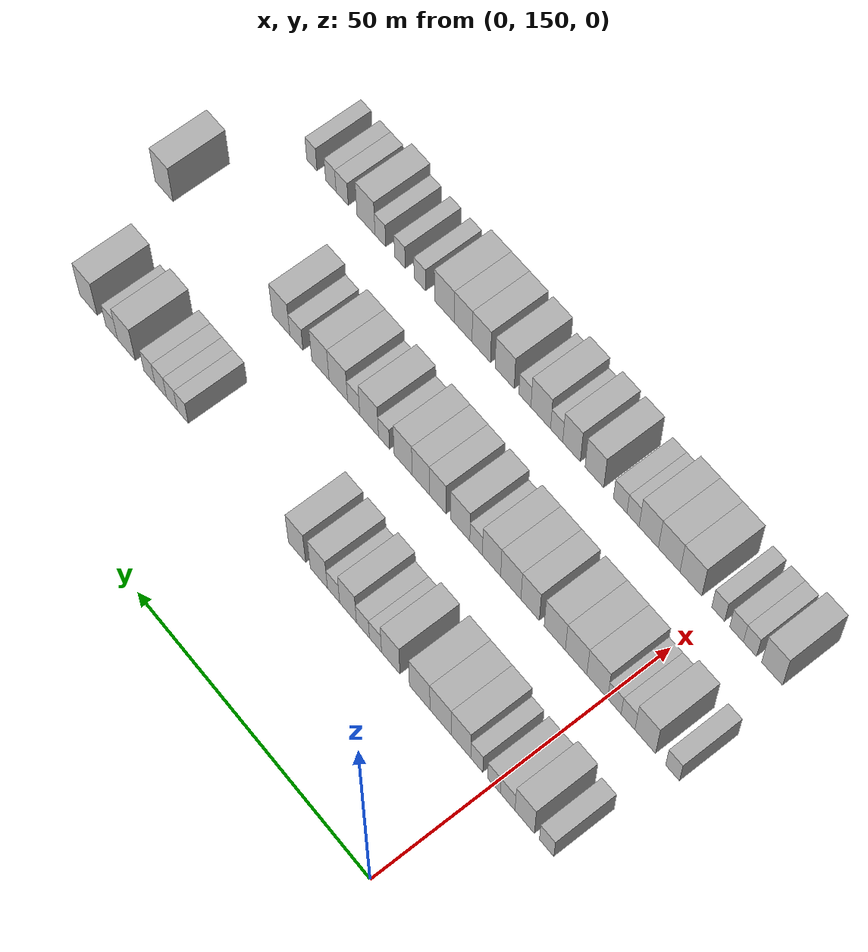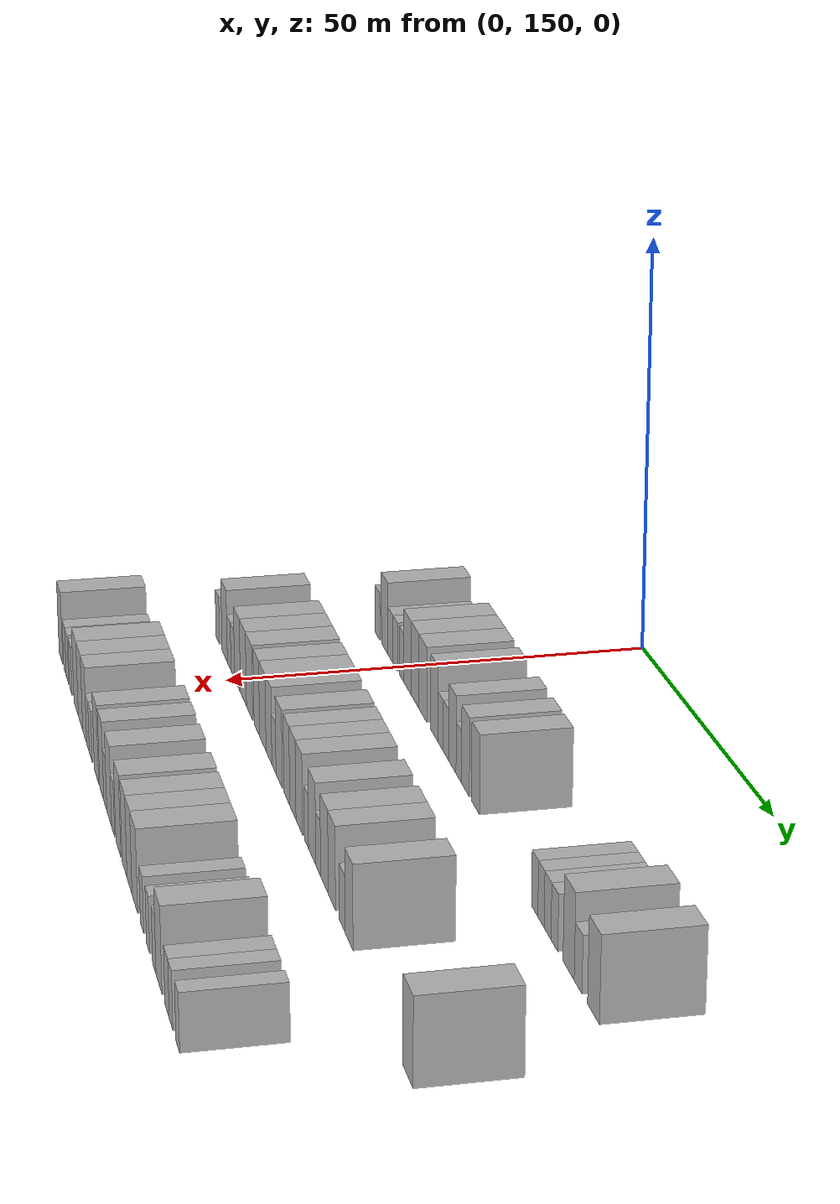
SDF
<sdf version="1.6">
 <world name="default">
  <model name="building_94">
   <static>1</static>
   <pose>25.0000 139.2223 0 0.000000 0.000000 0.000000</pose>
   <link name="link">
    <pose>0 0 3.00 0 0 0</pose>
    <collision name="collision"><geometry><box><size>10.0000 2.8879 6.0000</size></box></geometry></collision>
    <visual name="visual">
     <cast_shadows>0</cast_shadows>
     <geometry><box><size>10.0000 2.8879 6.0000</size></box></geometry>
     <material>
      <script>
       <uri>model://HANNAS_wall/materials/scripts</uri>
       <uri>model://HANNAS_wall/materials/textures</uri>
       <name>vrc/HANNAS_wall</name>
      </script>
     </material>
    </visual>
   </link>
  </model>
  <model name="building_95">
   <static>1</static>
   <pose>25.0000 143.6231 0 0.000000 0.000000 0.000000</pose>
   <link name="link">
    <pose>0 0 4.50 0 0 0</pose>
    <collision name="collision"><geometry><box><size>10.0000 3.9137 9.0000</size></box></geometry></collision>
    <visual name="visual">
     <cast_shadows>0</cast_shadows>
     <geometry><box><size>10.0000 3.9137 9.0000</size></box></geometry>
     <material>
      <script>
       <uri>model://HANNAS_wall/materials/scripts</uri>
       <uri>model://HANNAS_wall/materials/textures</uri>
       <name>vrc/HANNAS_wall</name>
      </script>
     </material>
    </visual>
   </link>
  </model>
  <model name="building_96">
   <static>1</static>
   <pose>25.0000 147.0490 0 0.000000 0.000000 0.000000</pose>
   <link name="link">
    <pose>0 0 3.00 0 0 0</pose>
    <collision name="collision"><geometry><box><size>10.0000 2.9381 6.0000</size></box></geometry></collision>
    <visual name="visual">
     <cast_shadows>0</cast_shadows>
     <geometry><box><size>10.0000 2.9381 6.0000</size></box></geometry>
     <material>
      <script>
       <uri>model://HANNAS_wall/materials/scripts</uri>
       <uri>model://HANNAS_wall/materials/textures</uri>
       <name>vrc/HANNAS_wall</name>
      </script>
     </material>
    </visual>
   </link>
  </model>
  <model name="building_97">
   <static>1</static>
   <pose>25.0000 149.8171 0 0.000000 0.000000 0.000000</pose>
   <link name="link">
    <pose>0 0 3.00 0 0 0</pose>
    <collision name="collision"><geometry><box><size>10.0000 2.5981 6.0000</size></box></geometry></collision>
    <visual name="visual">
     <cast_shadows>0</cast_shadows>
     <geometry><box><size>10.0000 2.5981 6.0000</size></box></geometry>
     <material>
      <script>
       <uri>model://HANNAS_wall/materials/scripts</uri>
       <uri>model://HANNAS_wall/materials/textures</uri>
       <name>vrc/HANNAS_wall</name>
      </script>
     </material>
    </visual>
   </link>
  </model>
  <model name="building_98">
   <static>1</static>
   <pose>25.0000 153.3529 0 0.000000 0.000000 0.000000</pose>
   <link name="link">
    <pose>0 0 3.00 0 0 0</pose>
    <collision name="collision"><geometry><box><size>10.0000 2.4735 6.0000</size></box></geometry></collision>
    <visual name="visual">
     <cast_shadows>0</cast_shadows>
     <geometry><box><size>10.0000 2.4735 6.0000</size></box></geometry>
     <material>
      <script>
       <uri>model://HANNAS_wall/materials/scripts</uri>
       <uri>model://HANNAS_wall/materials/textures</uri>
       <name>vrc/HANNAS_wall</name>
      </script>
     </material>
    </visual>
   </link>
  </model>
  <model name="building_99">
   <static>1</static>
   <pose>25.0000 156.6091 0 0.000000 0.000000 0.000000</pose>
   <link name="link">
    <pose>0 0 4.50 0 0 0</pose>
    <collision name="collision"><geometry><box><size>10.0000 4.0388 9.0000</size></box></geometry></collision>
    <visual name="visual">
     <cast_shadows>0</cast_shadows>
     <geometry><box><size>10.0000 4.0388 9.0000</size></box></geometry>
     <material>
      <script>
       <uri>model://HANNAS_wall/materials/scripts</uri>
       <uri>model://HANNAS_wall/materials/textures</uri>
       <name>vrc/HANNAS_wall</name>
      </script>
     </material>
    </visual>
   </link>
  </model>
  <model name="building_100">
   <static>1</static>
   <pose>25.0000 160.8219 0 0.000000 0.000000 0.000000</pose>
   <link name="link">
    <pose>0 0 4.50 0 0 0</pose>
    <collision name="collision"><geometry><box><size>10.0000 4.3868 9.0000</size></box></geometry></collision>
    <visual name="visual">
     <cast_shadows>0</cast_shadows>
     <geometry><box><size>10.0000 4.3868 9.0000</size></box></geometry>
     <material>
      <script>
       <uri>model://HANNAS_wall/materials/scripts</uri>
       <uri>model://HANNAS_wall/materials/textures</uri>
       <name>vrc/HANNAS_wall</name>
      </script>
     </material>
    </visual>
   </link>
  </model>
  <model name="building_101">
   <static>1</static>
   <pose>25.0000 165.1720 0 0.000000 0.000000 0.000000</pose>
   <link name="link">
    <pose>0 0 4.50 0 0 0</pose>
    <collision name="collision"><geometry><box><size>10.0000 4.3135 9.0000</size></box></geometry></collision>
    <visual name="visual">
     <cast_shadows>0</cast_shadows>
     <geometry><box><size>10.0000 4.3135 9.0000</size></box></geometry>
     <material>
      <script>
       <uri>model://HANNAS_wall/materials/scripts</uri>
       <uri>model://HANNAS_wall/materials/textures</uri>
       <name>vrc/HANNAS_wall</name>
      </script>
     </material>
    </visual>
   </link>
  </model>
  <model name="building_102">
   <static>1</static>
   <pose>25.0000 171.2678 0 0.000000 0.000000 0.000000</pose>
   <link name="link">
    <pose>0 0 4.50 0 0 0</pose>
    <collision name="collision"><geometry><box><size>10.0000 3.8781 9.0000</size></box></geometry></collision>
    <visual name="visual">
     <cast_shadows>0</cast_shadows>
     <geometry><box><size>10.0000 3.8781 9.0000</size></box></geometry>
     <material>
      <script>
       <uri>model://HANNAS_wall/materials/scripts</uri>
       <uri>model://HANNAS_wall/materials/textures</uri>
       <name>vrc/HANNAS_wall</name>
      </script>
     </material>
    </visual>
   </link>
  </model>
  <model name="building_103">
   <static>1</static>
   <pose>25.0000 174.5036 0 0.000000 0.000000 0.000000</pose>
   <link name="link">
    <pose>0 0 3.00 0 0 0</pose>
    <collision name="collision"><geometry><box><size>10.0000 2.5934 6.0000</size></box></geometry></collision>
    <visual name="visual">
     <cast_shadows>0</cast_shadows>
     <geometry><box><size>10.0000 2.5934 6.0000</size></box></geometry>
     <material>
      <script>
       <uri>model://HANNAS_wall/materials/scripts</uri>
       <uri>model://HANNAS_wall/materials/textures</uri>
       <name>vrc/HANNAS_wall</name>
      </script>
     </material>
    </visual>
   </link>
  </model>
  <model name="building_104">
   <static>1</static>
   <pose>25.0000 177.1857 0 0.000000 0.000000 0.000000</pose>
   <link name="link">
    <pose>0 0 3.00 0 0 0</pose>
    <collision name="collision"><geometry><box><size>10.0000 2.7708 6.0000</size></box></geometry></collision>
    <visual name="visual">
     <cast_shadows>0</cast_shadows>
     <geometry><box><size>10.0000 2.7708 6.0000</size></box></geometry>
     <material>
      <script>
       <uri>model://HANNAS_wall/materials/scripts</uri>
       <uri>model://HANNAS_wall/materials/textures</uri>
       <name>vrc/HANNAS_wall</name>
      </script>
     </material>
    </visual>
   </link>
  </model>
  <model name="building_105">
   <static>1</static>
   <pose>25.0000 180.3729 0 0.000000 0.000000 0.000000</pose>
   <link name="link">
    <pose>0 0 4.50 0 0 0</pose>
    <collision name="collision"><geometry><box><size>10.0000 3.6037 9.0000</size></box></geometry></collision>
    <visual name="visual">
     <cast_shadows>0</cast_shadows>
     <geometry><box><size>10.0000 3.6037 9.0000</size></box></geometry>
     <material>
      <script>
       <uri>model://HANNAS_wall/materials/scripts</uri>
       <uri>model://HANNAS_wall/materials/textures</uri>
       <name>vrc/HANNAS_wall</name>
      </script>
     </material>
    </visual>
   </link>
  </model>
  <model name="building_106">
   <static>1</static>
   <pose>25.0000 183.4995 0 0.000000 0.000000 0.000000</pose>
   <link name="link">
    <pose>0 0 3.00 0 0 0</pose>
    <collision name="collision"><geometry><box><size>10.0000 2.6494 6.0000</size></box></geometry></collision>
    <visual name="visual">
     <cast_shadows>0</cast_shadows>
     <geometry><box><size>10.0000 2.6494 6.0000</size></box></geometry>
     <material>
      <script>
       <uri>model://HANNAS_wall/materials/scripts</uri>
       <uri>model://HANNAS_wall/materials/textures</uri>
       <name>vrc/HANNAS_wall</name>
      </script>
     </material>
    </visual>
   </link>
  </model>
  <model name="building_107">
   <static>1</static>
   <pose>25.0000 186.6997 0 0.000000 0.000000 0.000000</pose>
   <link name="link">
    <pose>0 0 4.50 0 0 0</pose>
    <collision name="collision"><geometry><box><size>10.0000 3.7511 9.0000</size></box></geometry></collision>
    <visual name="visual">
     <cast_shadows>0</cast_shadows>
     <geometry><box><size>10.0000 3.7511 9.0000</size></box></geometry>
     <material>
      <script>
       <uri>model://HANNAS_wall/materials/scripts</uri>
       <uri>model://HANNAS_wall/materials/textures</uri>
       <name>vrc/HANNAS_wall</name>
      </script>
     </material>
    </visual>
   </link>
  </model>
  <model name="building_108">
   <static>1</static>
   <pose>25.0000 191.4714 0 0.000000 0.000000 0.000000</pose>
   <link name="link">
    <pose>0 0 4.50 0 0 0</pose>
    <collision name="collision"><geometry><box><size>10.0000 3.7923 9.0000</size></box></geometry></collision>
    <visual name="visual">
     <cast_shadows>0</cast_shadows>
     <geometry><box><size>10.0000 3.7923 9.0000</size></box></geometry>
     <material>
      <script>
       <uri>model://HANNAS_wall/materials/scripts</uri>
       <uri>model://HANNAS_wall/materials/textures</uri>
       <name>vrc/HANNAS_wall</name>
      </script>
     </material>
    </visual>
   </link>
  </model>
  <model name="building_109">
   <static>1</static>
   <pose>25.0000 217.1510 0 0.000000 0.000000 0.000000</pose>
   <link name="link">
    <pose>0 0 3.00 0 0 0</pose>
    <collision name="collision"><geometry><box><size>10.0000 2.5223 6.0000</size></box></geometry></collision>
    <visual name="visual">
     <cast_shadows>0</cast_shadows>
     <geometry><box><size>10.0000 2.5223 6.0000</size></box></geometry>
     <material>
      <script>
       <uri>model://HANNAS_wall/materials/scripts</uri>
       <uri>model://HANNAS_wall/materials/textures</uri>
       <name>vrc/HANNAS_wall</name>
      </script>
     </material>
    </visual>
   </link>
  </model>
  <model name="building_110">
   <static>1</static>
   <pose>25.0000 219.6556 0 0.000000 0.000000 0.000000</pose>
   <link name="link">
    <pose>0 0 3.00 0 0 0</pose>
    <collision name="collision"><geometry><box><size>10.0000 2.4870 6.0000</size></box></geometry></collision>
    <visual name="visual">
     <cast_shadows>0</cast_shadows>
     <geometry><box><size>10.0000 2.4870 6.0000</size></box></geometry>
     <material>
      <script>
       <uri>model://HANNAS_wall/materials/scripts</uri>
       <uri>model://HANNAS_wall/materials/textures</uri>
       <name>vrc/HANNAS_wall</name>
      </script>
     </material>
    </visual>
   </link>
  </model>
  <model name="building_111">
   <static>1</static>
   <pose>25.0000 222.2419 0 0.000000 0.000000 0.000000</pose>
   <link name="link">
    <pose>0 0 3.00 0 0 0</pose>
    <collision name="collision"><geometry><box><size>10.0000 2.6856 6.0000</size></box></geometry></collision>
    <visual name="visual">
     <cast_shadows>0</cast_shadows>
     <geometry><box><size>10.0000 2.6856 6.0000</size></box></geometry>
     <material>
      <script>
       <uri>model://HANNAS_wall/materials/scripts</uri>
       <uri>model://HANNAS_wall/materials/textures</uri>
       <name>vrc/HANNAS_wall</name>
      </script>
     </material>
    </visual>
   </link>
  </model>
  <model name="building_112">
   <static>1</static>
   <pose>25.0000 224.8906 0 0.000000 0.000000 0.000000</pose>
   <link name="link">
    <pose>0 0 3.00 0 0 0</pose>
    <collision name="collision"><geometry><box><size>10.0000 2.6119 6.0000</size></box></geometry></collision>
    <visual name="visual">
     <cast_shadows>0</cast_shadows>
     <geometry><box><size>10.0000 2.6119 6.0000</size></box></geometry>
     <material>
      <script>
       <uri>model://HANNAS_wall/materials/scripts</uri>
       <uri>model://HANNAS_wall/materials/textures</uri>
       <name>vrc/HANNAS_wall</name>
      </script>
     </material>
    </visual>
   </link>
  </model>
  <model name="building_113">
   <static>1</static>
   <pose>25.0000 230.2729 0 0.000000 0.000000 0.000000</pose>
   <link name="link">
    <pose>0 0 4.50 0 0 0</pose>
    <collision name="collision"><geometry><box><size>10.0000 4.1528 9.0000</size></box></geometry></collision>
    <visual name="visual">
     <cast_shadows>0</cast_shadows>
     <geometry><box><size>10.0000 4.1528 9.0000</size></box></geometry>
     <material>
      <script>
       <uri>model://HANNAS_wall/materials/scripts</uri>
       <uri>model://HANNAS_wall/materials/textures</uri>
       <name>vrc/HANNAS_wall</name>
      </script>
     </material>
    </visual>
   </link>
  </model>
  <model name="building_114">
   <static>1</static>
   <pose>25.0000 233.7670 0 0.000000 0.000000 0.000000</pose>
   <link name="link">
    <pose>0 0 3.00 0 0 0</pose>
    <collision name="collision"><geometry><box><size>10.0000 2.8354 6.0000</size></box></geometry></collision>
    <visual name="visual">
     <cast_shadows>0</cast_shadows>
     <geometry><box><size>10.0000 2.8354 6.0000</size></box></geometry>
     <material>
      <script>
       <uri>model://HANNAS_wall/materials/scripts</uri>
       <uri>model://HANNAS_wall/materials/textures</uri>
       <name>vrc/HANNAS_wall</name>
      </script>
     </material>
    </visual>
   </link>
  </model>
  <model name="building_115">
   <static>1</static>
   <pose>25.0000 239.2874 0 0.000000 0.000000 0.000000</pose>
   <link name="link">
    <pose>0 0 4.50 0 0 0</pose>
    <collision name="collision"><geometry><box><size>10.0000 4.2054 9.0000</size></box></geometry></collision>
    <visual name="visual">
     <cast_shadows>0</cast_shadows>
     <geometry><box><size>10.0000 4.2054 9.0000</size></box></geometry>
     <material>
      <script>
       <uri>model://HANNAS_wall/materials/scripts</uri>
       <uri>model://HANNAS_wall/materials/textures</uri>
       <name>vrc/HANNAS_wall</name>
      </script>
     </material>
    </visual>
   </link>
  </model>
  <model name="building_212">
   <static>1</static>
   <pose>44.0000 136.7989 0 0.000000 0.000000 0.000000</pose>
   <link name="link">
    <pose>0 0 3.00 0 0 0</pose>
    <collision name="collision"><geometry><box><size>10.0000 2.7330 6.0000</size></box></geometry></collision>
    <visual name="visual">
     <cast_shadows>0</cast_shadows>
     <geometry><box><size>10.0000 2.7330 6.0000</size></box></geometry>
     <material>
      <script>
       <uri>model://HANNAS_wall/materials/scripts</uri>
       <uri>model://HANNAS_wall/materials/textures</uri>
       <name>vrc/HANNAS_wall</name>
      </script>
     </material>
    </visual>
   </link>
  </model>
  <model name="building_213">
   <static>1</static>
   <pose>44.0000 142.2242 0 0.000000 0.000000 0.000000</pose>
   <link name="link">
    <pose>0 0 4.50 0 0 0</pose>
    <collision name="collision"><geometry><box><size>10.0000 4.1176 9.0000</size></box></geometry></collision>
    <visual name="visual">
     <cast_shadows>0</cast_shadows>
     <geometry><box><size>10.0000 4.1176 9.0000</size></box></geometry>
     <material>
      <script>
       <uri>model://HANNAS_wall/materials/scripts</uri>
       <uri>model://HANNAS_wall/materials/textures</uri>
       <name>vrc/HANNAS_wall</name>
      </script>
     </material>
    </visual>
   </link>
  </model>
  <model name="building_214">
   <static>1</static>
   <pose>44.0000 145.6727 0 0.000000 0.000000 0.000000</pose>
   <link name="link">
    <pose>0 0 3.00 0 0 0</pose>
    <collision name="collision"><geometry><box><size>10.0000 2.7794 6.0000</size></box></geometry></collision>
    <visual name="visual">
     <cast_shadows>0</cast_shadows>
     <geometry><box><size>10.0000 2.7794 6.0000</size></box></geometry>
     <material>
      <script>
       <uri>model://HANNAS_wall/materials/scripts</uri>
       <uri>model://HANNAS_wall/materials/textures</uri>
       <name>vrc/HANNAS_wall</name>
      </script>
     </material>
    </visual>
   </link>
  </model>
  <model name="building_215">
   <static>1</static>
   <pose>44.0000 148.4263 0 0.000000 0.000000 0.000000</pose>
   <link name="link">
    <pose>0 0 3.00 0 0 0</pose>
    <collision name="collision"><geometry><box><size>10.0000 2.7279 6.0000</size></box></geometry></collision>
    <visual name="visual">
     <cast_shadows>0</cast_shadows>
     <geometry><box><size>10.0000 2.7279 6.0000</size></box></geometry>
     <material>
      <script>
       <uri>model://HANNAS_wall/materials/scripts</uri>
       <uri>model://HANNAS_wall/materials/textures</uri>
       <name>vrc/HANNAS_wall</name>
      </script>
     </material>
    </visual>
   </link>
  </model>
  <model name="building_216">
   <static>1</static>
   <pose>44.0000 151.9061 0 0.000000 0.000000 0.000000</pose>
   <link name="link">
    <pose>0 0 4.50 0 0 0</pose>
    <collision name="collision"><geometry><box><size>10.0000 4.2317 9.0000</size></box></geometry></collision>
    <visual name="visual">
     <cast_shadows>0</cast_shadows>
     <geometry><box><size>10.0000 4.2317 9.0000</size></box></geometry>
     <material>
      <script>
       <uri>model://HANNAS_wall/materials/scripts</uri>
       <uri>model://HANNAS_wall/materials/textures</uri>
       <name>vrc/HANNAS_wall</name>
      </script>
     </material>
    </visual>
   </link>
  </model>
  <model name="building_217">
   <static>1</static>
   <pose>44.0000 156.2125 0 0.000000 0.000000 0.000000</pose>
   <link name="link">
    <pose>0 0 4.50 0 0 0</pose>
    <collision name="collision"><geometry><box><size>10.0000 4.3810 9.0000</size></box></geometry></collision>
    <visual name="visual">
     <cast_shadows>0</cast_shadows>
     <geometry><box><size>10.0000 4.3810 9.0000</size></box></geometry>
     <material>
      <script>
       <uri>model://HANNAS_wall/materials/scripts</uri>
       <uri>model://HANNAS_wall/materials/textures</uri>
       <name>vrc/HANNAS_wall</name>
      </script>
     </material>
    </visual>
   </link>
  </model>
  <model name="building_218">
   <static>1</static>
   <pose>44.0000 160.5790 0 0.000000 0.000000 0.000000</pose>
   <link name="link">
    <pose>0 0 4.50 0 0 0</pose>
    <collision name="collision"><geometry><box><size>10.0000 4.3520 9.0000</size></box></geometry></collision>
    <visual name="visual">
     <cast_shadows>0</cast_shadows>
     <geometry><box><size>10.0000 4.3520 9.0000</size></box></geometry>
     <material>
      <script>
       <uri>model://HANNAS_wall/materials/scripts</uri>
       <uri>model://HANNAS_wall/materials/textures</uri>
       <name>vrc/HANNAS_wall</name>
      </script>
     </material>
    </visual>
   </link>
  </model>
  <model name="building_219">
   <static>1</static>
   <pose>44.0000 165.6683 0 0.000000 0.000000 0.000000</pose>
   <link name="link">
    <pose>0 0 4.50 0 0 0</pose>
    <collision name="collision"><geometry><box><size>10.0000 3.8267 9.0000</size></box></geometry></collision>
    <visual name="visual">
     <cast_shadows>0</cast_shadows>
     <geometry><box><size>10.0000 3.8267 9.0000</size></box></geometry>
     <material>
      <script>
       <uri>model://HANNAS_wall/materials/scripts</uri>
       <uri>model://HANNAS_wall/materials/textures</uri>
       <name>vrc/HANNAS_wall</name>
      </script>
     </material>
    </visual>
   </link>
  </model>
  <model name="building_220">
   <static>1</static>
   <pose>44.0000 169.7046 0 0.000000 0.000000 0.000000</pose>
   <link name="link">
    <pose>0 0 4.50 0 0 0</pose>
    <collision name="collision"><geometry><box><size>10.0000 4.2459 9.0000</size></box></geometry></collision>
    <visual name="visual">
     <cast_shadows>0</cast_shadows>
     <geometry><box><size>10.0000 4.2459 9.0000</size></box></geometry>
     <material>
      <script>
       <uri>model://HANNAS_wall/materials/scripts</uri>
       <uri>model://HANNAS_wall/materials/textures</uri>
       <name>vrc/HANNAS_wall</name>
      </script>
     </material>
    </visual>
   </link>
  </model>
  <model name="building_221">
   <static>1</static>
   <pose>44.0000 173.7586 0 0.000000 0.000000 0.000000</pose>
   <link name="link">
    <pose>0 0 4.50 0 0 0</pose>
    <collision name="collision"><geometry><box><size>10.0000 3.8621 9.0000</size></box></geometry></collision>
    <visual name="visual">
     <cast_shadows>0</cast_shadows>
     <geometry><box><size>10.0000 3.8621 9.0000</size></box></geometry>
     <material>
      <script>
       <uri>model://HANNAS_wall/materials/scripts</uri>
       <uri>model://HANNAS_wall/materials/textures</uri>
       <name>vrc/HANNAS_wall</name>
      </script>
     </material>
    </visual>
   </link>
  </model>
  <model name="building_222">
   <static>1</static>
   <pose>44.0000 177.0190 0 0.000000 0.000000 0.000000</pose>
   <link name="link">
    <pose>0 0 3.00 0 0 0</pose>
    <collision name="collision"><geometry><box><size>10.0000 2.6587 6.0000</size></box></geometry></collision>
    <visual name="visual">
     <cast_shadows>0</cast_shadows>
     <geometry><box><size>10.0000 2.6587 6.0000</size></box></geometry>
     <material>
      <script>
       <uri>model://HANNAS_wall/materials/scripts</uri>
       <uri>model://HANNAS_wall/materials/textures</uri>
       <name>vrc/HANNAS_wall</name>
      </script>
     </material>
    </visual>
   </link>
  </model>
  <model name="building_223">
   <static>1</static>
   <pose>44.0000 180.3792 0 0.000000 0.000000 0.000000</pose>
   <link name="link">
    <pose>0 0 4.50 0 0 0</pose>
    <collision name="collision"><geometry><box><size>10.0000 4.0618 9.0000</size></box></geometry></collision>
    <visual name="visual">
     <cast_shadows>0</cast_shadows>
     <geometry><box><size>10.0000 4.0618 9.0000</size></box></geometry>
     <material>
      <script>
       <uri>model://HANNAS_wall/materials/scripts</uri>
       <uri>model://HANNAS_wall/materials/textures</uri>
       <name>vrc/HANNAS_wall</name>
      </script>
     </material>
    </visual>
   </link>
  </model>
  <model name="building_224">
   <static>1</static>
   <pose>44.0000 185.2115 0 0.000000 0.000000 0.000000</pose>
   <link name="link">
    <pose>0 0 4.50 0 0 0</pose>
    <collision name="collision"><geometry><box><size>10.0000 3.6027 9.0000</size></box></geometry></collision>
    <visual name="visual">
     <cast_shadows>0</cast_shadows>
     <geometry><box><size>10.0000 3.6027 9.0000</size></box></geometry>
     <material>
      <script>
       <uri>model://HANNAS_wall/materials/scripts</uri>
       <uri>model://HANNAS_wall/materials/textures</uri>
       <name>vrc/HANNAS_wall</name>
      </script>
     </material>
    </visual>
   </link>
  </model>
  <model name="building_225">
   <static>1</static>
   <pose>44.0000 188.8813 0 0.000000 0.000000 0.000000</pose>
   <link name="link">
    <pose>0 0 4.50 0 0 0</pose>
    <collision name="collision"><geometry><box><size>10.0000 3.7370 9.0000</size></box></geometry></collision>
    <visual name="visual">
     <cast_shadows>0</cast_shadows>
     <geometry><box><size>10.0000 3.7370 9.0000</size></box></geometry>
     <material>
      <script>
       <uri>model://HANNAS_wall/materials/scripts</uri>
       <uri>model://HANNAS_wall/materials/textures</uri>
       <name>vrc/HANNAS_wall</name>
      </script>
     </material>
    </visual>
   </link>
  </model>
  <model name="building_226">
   <static>1</static>
   <pose>44.0000 192.7222 0 0.000000 0.000000 0.000000</pose>
   <link name="link">
    <pose>0 0 4.50 0 0 0</pose>
    <collision name="collision"><geometry><box><size>10.0000 3.9448 9.0000</size></box></geometry></collision>
    <visual name="visual">
     <cast_shadows>0</cast_shadows>
     <geometry><box><size>10.0000 3.9448 9.0000</size></box></geometry>
     <material>
      <script>
       <uri>model://HANNAS_wall/materials/scripts</uri>
       <uri>model://HANNAS_wall/materials/textures</uri>
       <name>vrc/HANNAS_wall</name>
      </script>
     </material>
    </visual>
   </link>
  </model>
  <model name="building_227">
   <static>1</static>
   <pose>44.0000 196.9129 0 0.000000 0.000000 0.000000</pose>
   <link name="link">
    <pose>0 0 3.00 0 0 0</pose>
    <collision name="collision"><geometry><box><size>10.0000 2.4365 6.0000</size></box></geometry></collision>
    <visual name="visual">
     <cast_shadows>0</cast_shadows>
     <geometry><box><size>10.0000 2.4365 6.0000</size></box></geometry>
     <material>
      <script>
       <uri>model://HANNAS_wall/materials/scripts</uri>
       <uri>model://HANNAS_wall/materials/textures</uri>
       <name>vrc/HANNAS_wall</name>
      </script>
     </material>
    </visual>
   </link>
  </model>
  <model name="building_228">
   <static>1</static>
   <pose>44.0000 200.2077 0 0.000000 0.000000 0.000000</pose>
   <link name="link">
    <pose>0 0 4.50 0 0 0</pose>
    <collision name="collision"><geometry><box><size>10.0000 4.1532 9.0000</size></box></geometry></collision>
    <visual name="visual">
     <cast_shadows>0</cast_shadows>
     <geometry><box><size>10.0000 4.1532 9.0000</size></box></geometry>
     <material>
      <script>
       <uri>model://HANNAS_wall/materials/scripts</uri>
       <uri>model://HANNAS_wall/materials/textures</uri>
       <name>vrc/HANNAS_wall</name>
      </script>
     </material>
    </visual>
   </link>
  </model>
  <model name="building_229">
   <static>1</static>
   <pose>44.0000 203.6355 0 0.000000 0.000000 0.000000</pose>
   <link name="link">
    <pose>0 0 3.00 0 0 0</pose>
    <collision name="collision"><geometry><box><size>10.0000 2.7024 6.0000</size></box></geometry></collision>
    <visual name="visual">
     <cast_shadows>0</cast_shadows>
     <geometry><box><size>10.0000 2.7024 6.0000</size></box></geometry>
     <material>
      <script>
       <uri>model://HANNAS_wall/materials/scripts</uri>
       <uri>model://HANNAS_wall/materials/textures</uri>
       <name>vrc/HANNAS_wall</name>
      </script>
     </material>
    </visual>
   </link>
  </model>
  <model name="building_230">
   <static>1</static>
   <pose>44.0000 207.0620 0 0.000000 0.000000 0.000000</pose>
   <link name="link">
    <pose>0 0 4.50 0 0 0</pose>
    <collision name="collision"><geometry><box><size>10.0000 4.1505 9.0000</size></box></geometry></collision>
    <visual name="visual">
     <cast_shadows>0</cast_shadows>
     <geometry><box><size>10.0000 4.1505 9.0000</size></box></geometry>
     <material>
      <script>
       <uri>model://HANNAS_wall/materials/scripts</uri>
       <uri>model://HANNAS_wall/materials/textures</uri>
       <name>vrc/HANNAS_wall</name>
      </script>
     </material>
    </visual>
   </link>
  </model>
  <model name="building_231">
   <static>1</static>
   <pose>44.0000 211.0865 0 0.000000 0.000000 0.000000</pose>
   <link name="link">
    <pose>0 0 4.50 0 0 0</pose>
    <collision name="collision"><geometry><box><size>10.0000 3.8985 9.0000</size></box></geometry></collision>
    <visual name="visual">
     <cast_shadows>0</cast_shadows>
     <geometry><box><size>10.0000 3.8985 9.0000</size></box></geometry>
     <material>
      <script>
       <uri>model://HANNAS_wall/materials/scripts</uri>
       <uri>model://HANNAS_wall/materials/textures</uri>
       <name>vrc/HANNAS_wall</name>
      </script>
     </material>
    </visual>
   </link>
  </model>
  <model name="building_232">
   <static>1</static>
   <pose>44.0000 216.5207 0 0.000000 0.000000 0.000000</pose>
   <link name="link">
    <pose>0 0 3.00 0 0 0</pose>
    <collision name="collision"><geometry><box><size>10.0000 2.9701 6.0000</size></box></geometry></collision>
    <visual name="visual">
     <cast_shadows>0</cast_shadows>
     <geometry><box><size>10.0000 2.9701 6.0000</size></box></geometry>
     <material>
      <script>
       <uri>model://HANNAS_wall/materials/scripts</uri>
       <uri>model://HANNAS_wall/materials/textures</uri>
       <name>vrc/HANNAS_wall</name>
      </script>
     </material>
    </visual>
   </link>
  </model>
  <model name="building_233">
   <static>1</static>
   <pose>44.0000 220.0233 0 0.000000 0.000000 0.000000</pose>
   <link name="link">
    <pose>0 0 4.50 0 0 0</pose>
    <collision name="collision"><geometry><box><size>10.0000 4.0351 9.0000</size></box></geometry></collision>
    <visual name="visual">
     <cast_shadows>0</cast_shadows>
     <geometry><box><size>10.0000 4.0351 9.0000</size></box></geometry>
     <material>
      <script>
       <uri>model://HANNAS_wall/materials/scripts</uri>
       <uri>model://HANNAS_wall/materials/textures</uri>
       <name>vrc/HANNAS_wall</name>
      </script>
     </material>
    </visual>
   </link>
  </model>
  <model name="building_234">
   <static>1</static>
   <pose>44.0000 247.4786 0 0.000000 0.000000 0.000000</pose>
   <link name="link">
    <pose>0 0 4.50 0 0 0</pose>
    <collision name="collision"><geometry><box><size>10.0000 4.2918 9.0000</size></box></geometry></collision>
    <visual name="visual">
     <cast_shadows>0</cast_shadows>
     <geometry><box><size>10.0000 4.2918 9.0000</size></box></geometry>
     <material>
      <script>
       <uri>model://HANNAS_wall/materials/scripts</uri>
       <uri>model://HANNAS_wall/materials/textures</uri>
       <name>vrc/HANNAS_wall</name>
      </script>
     </material>
    </visual>
   </link>
  </model>
  <model name="building_327">
   <static>1</static>
   <pose>63.0000 138.9856 0 0.000000 0.000000 0.000000</pose>
   <link name="link">
    <pose>0 0 4.50 0 0 0</pose>
    <collision name="collision"><geometry><box><size>10.0000 4.1306 9.0000</size></box></geometry></collision>
    <visual name="visual">
     <cast_shadows>0</cast_shadows>
     <geometry><box><size>10.0000 4.1306 9.0000</size></box></geometry>
     <material>
      <script>
       <uri>model://HANNAS_wall/materials/scripts</uri>
       <uri>model://HANNAS_wall/materials/textures</uri>
       <name>vrc/HANNAS_wall</name>
      </script>
     </material>
    </visual>
   </link>
  </model>
  <model name="building_328">
   <static>1</static>
   <pose>63.0000 143.3593 0 0.000000 0.000000 0.000000</pose>
   <link name="link">
    <pose>0 0 3.00 0 0 0</pose>
    <collision name="collision"><geometry><box><size>10.0000 2.6169 6.0000</size></box></geometry></collision>
    <visual name="visual">
     <cast_shadows>0</cast_shadows>
     <geometry><box><size>10.0000 2.6169 6.0000</size></box></geometry>
     <material>
      <script>
       <uri>model://HANNAS_wall/materials/scripts</uri>
       <uri>model://HANNAS_wall/materials/textures</uri>
       <name>vrc/HANNAS_wall</name>
      </script>
     </material>
    </visual>
   </link>
  </model>
  <model name="building_329">
   <static>1</static>
   <pose>63.0000 146.0314 0 0.000000 0.000000 0.000000</pose>
   <link name="link">
    <pose>0 0 3.00 0 0 0</pose>
    <collision name="collision"><geometry><box><size>10.0000 2.7273 6.0000</size></box></geometry></collision>
    <visual name="visual">
     <cast_shadows>0</cast_shadows>
     <geometry><box><size>10.0000 2.7273 6.0000</size></box></geometry>
     <material>
      <script>
       <uri>model://HANNAS_wall/materials/scripts</uri>
       <uri>model://HANNAS_wall/materials/textures</uri>
       <name>vrc/HANNAS_wall</name>
      </script>
     </material>
    </visual>
   </link>
  </model>
  <model name="building_330">
   <static>1</static>
   <pose>63.0000 149.6946 0 0.000000 0.000000 0.000000</pose>
   <link name="link">
    <pose>0 0 3.00 0 0 0</pose>
    <collision name="collision"><geometry><box><size>10.0000 2.5991 6.0000</size></box></geometry></collision>
    <visual name="visual">
     <cast_shadows>0</cast_shadows>
     <geometry><box><size>10.0000 2.5991 6.0000</size></box></geometry>
     <material>
      <script>
       <uri>model://HANNAS_wall/materials/scripts</uri>
       <uri>model://HANNAS_wall/materials/textures</uri>
       <name>vrc/HANNAS_wall</name>
      </script>
     </material>
    </visual>
   </link>
  </model>
  <model name="building_331">
   <static>1</static>
   <pose>63.0000 155.2184 0 0.000000 0.000000 0.000000</pose>
   <link name="link">
    <pose>0 0 4.50 0 0 0</pose>
    <collision name="collision"><geometry><box><size>10.0000 4.4485 9.0000</size></box></geometry></collision>
    <visual name="visual">
     <cast_shadows>0</cast_shadows>
     <geometry><box><size>10.0000 4.4485 9.0000</size></box></geometry>
     <material>
      <script>
       <uri>model://HANNAS_wall/materials/scripts</uri>
       <uri>model://HANNAS_wall/materials/textures</uri>
       <name>vrc/HANNAS_wall</name>
      </script>
     </material>
    </visual>
   </link>
  </model>
  <model name="building_332">
   <static>1</static>
   <pose>63.0000 159.6458 0 0.000000 0.000000 0.000000</pose>
   <link name="link">
    <pose>0 0 4.50 0 0 0</pose>
    <collision name="collision"><geometry><box><size>10.0000 4.4063 9.0000</size></box></geometry></collision>
    <visual name="visual">
     <cast_shadows>0</cast_shadows>
     <geometry><box><size>10.0000 4.4063 9.0000</size></box></geometry>
     <material>
      <script>
       <uri>model://HANNAS_wall/materials/scripts</uri>
       <uri>model://HANNAS_wall/materials/textures</uri>
       <name>vrc/HANNAS_wall</name>
      </script>
     </material>
    </visual>
   </link>
  </model>
  <model name="building_333">
   <static>1</static>
   <pose>63.0000 163.8386 0 0.000000 0.000000 0.000000</pose>
   <link name="link">
    <pose>0 0 4.50 0 0 0</pose>
    <collision name="collision"><geometry><box><size>10.0000 3.9792 9.0000</size></box></geometry></collision>
    <visual name="visual">
     <cast_shadows>0</cast_shadows>
     <geometry><box><size>10.0000 3.9792 9.0000</size></box></geometry>
     <material>
      <script>
       <uri>model://HANNAS_wall/materials/scripts</uri>
       <uri>model://HANNAS_wall/materials/textures</uri>
       <name>vrc/HANNAS_wall</name>
      </script>
     </material>
    </visual>
   </link>
  </model>
  <model name="building_334">
   <static>1</static>
   <pose>63.0000 167.0841 0 0.000000 0.000000 0.000000</pose>
   <link name="link">
    <pose>0 0 3.00 0 0 0</pose>
    <collision name="collision"><geometry><box><size>10.0000 2.5119 6.0000</size></box></geometry></collision>
    <visual name="visual">
     <cast_shadows>0</cast_shadows>
     <geometry><box><size>10.0000 2.5119 6.0000</size></box></geometry>
     <material>
      <script>
       <uri>model://HANNAS_wall/materials/scripts</uri>
       <uri>model://HANNAS_wall/materials/textures</uri>
       <name>vrc/HANNAS_wall</name>
      </script>
     </material>
    </visual>
   </link>
  </model>
  <model name="building_335">
   <static>1</static>
   <pose>63.0000 169.7542 0 0.000000 0.000000 0.000000</pose>
   <link name="link">
    <pose>0 0 3.00 0 0 0</pose>
    <collision name="collision"><geometry><box><size>10.0000 2.8281 6.0000</size></box></geometry></collision>
    <visual name="visual">
     <cast_shadows>0</cast_shadows>
     <geometry><box><size>10.0000 2.8281 6.0000</size></box></geometry>
     <material>
      <script>
       <uri>model://HANNAS_wall/materials/scripts</uri>
       <uri>model://HANNAS_wall/materials/textures</uri>
       <name>vrc/HANNAS_wall</name>
      </script>
     </material>
    </visual>
   </link>
  </model>
  <model name="building_336">
   <static>1</static>
   <pose>63.0000 175.1345 0 0.000000 0.000000 0.000000</pose>
   <link name="link">
    <pose>0 0 4.50 0 0 0</pose>
    <collision name="collision"><geometry><box><size>10.0000 3.9325 9.0000</size></box></geometry></collision>
    <visual name="visual">
     <cast_shadows>0</cast_shadows>
     <geometry><box><size>10.0000 3.9325 9.0000</size></box></geometry>
     <material>
      <script>
       <uri>model://HANNAS_wall/materials/scripts</uri>
       <uri>model://HANNAS_wall/materials/textures</uri>
       <name>vrc/HANNAS_wall</name>
      </script>
     </material>
    </visual>
   </link>
  </model>
  <model name="building_337">
   <static>1</static>
   <pose>63.0000 179.9681 0 0.000000 0.000000 0.000000</pose>
   <link name="link">
    <pose>0 0 4.50 0 0 0</pose>
    <collision name="collision"><geometry><box><size>10.0000 3.7348 9.0000</size></box></geometry></collision>
    <visual name="visual">
     <cast_shadows>0</cast_shadows>
     <geometry><box><size>10.0000 3.7348 9.0000</size></box></geometry>
     <material>
      <script>
       <uri>model://HANNAS_wall/materials/scripts</uri>
       <uri>model://HANNAS_wall/materials/textures</uri>
       <name>vrc/HANNAS_wall</name>
      </script>
     </material>
    </visual>
   </link>
  </model>
  <model name="building_338">
   <static>1</static>
   <pose>63.0000 183.1296 0 0.000000 0.000000 0.000000</pose>
   <link name="link">
    <pose>0 0 3.00 0 0 0</pose>
    <collision name="collision"><geometry><box><size>10.0000 2.5883 6.0000</size></box></geometry></collision>
    <visual name="visual">
     <cast_shadows>0</cast_shadows>
     <geometry><box><size>10.0000 2.5883 6.0000</size></box></geometry>
     <material>
      <script>
       <uri>model://HANNAS_wall/materials/scripts</uri>
       <uri>model://HANNAS_wall/materials/textures</uri>
       <name>vrc/HANNAS_wall</name>
      </script>
     </material>
    </visual>
   </link>
  </model>
  <model name="building_339">
   <static>1</static>
   <pose>63.0000 186.5284 0 0.000000 0.000000 0.000000</pose>
   <link name="link">
    <pose>0 0 4.50 0 0 0</pose>
    <collision name="collision"><geometry><box><size>10.0000 4.2092 9.0000</size></box></geometry></collision>
    <visual name="visual">
     <cast_shadows>0</cast_shadows>
     <geometry><box><size>10.0000 4.2092 9.0000</size></box></geometry>
     <material>
      <script>
       <uri>model://HANNAS_wall/materials/scripts</uri>
       <uri>model://HANNAS_wall/materials/textures</uri>
       <name>vrc/HANNAS_wall</name>
      </script>
     </material>
    </visual>
   </link>
  </model>
  <model name="building_340">
   <static>1</static>
   <pose>63.0000 189.9346 0 0.000000 0.000000 0.000000</pose>
   <link name="link">
    <pose>0 0 3.00 0 0 0</pose>
    <collision name="collision"><geometry><box><size>10.0000 2.6031 6.0000</size></box></geometry></collision>
    <visual name="visual">
     <cast_shadows>0</cast_shadows>
     <geometry><box><size>10.0000 2.6031 6.0000</size></box></geometry>
     <material>
      <script>
       <uri>model://HANNAS_wall/materials/scripts</uri>
       <uri>model://HANNAS_wall/materials/textures</uri>
       <name>vrc/HANNAS_wall</name>
      </script>
     </material>
    </visual>
   </link>
  </model>
  <model name="building_341">
   <static>1</static>
   <pose>63.0000 194.3151 0 0.000000 0.000000 0.000000</pose>
   <link name="link">
    <pose>0 0 4.50 0 0 0</pose>
    <collision name="collision"><geometry><box><size>10.0000 4.1581 9.0000</size></box></geometry></collision>
    <visual name="visual">
     <cast_shadows>0</cast_shadows>
     <geometry><box><size>10.0000 4.1581 9.0000</size></box></geometry>
     <material>
      <script>
       <uri>model://HANNAS_wall/materials/scripts</uri>
       <uri>model://HANNAS_wall/materials/textures</uri>
       <name>vrc/HANNAS_wall</name>
      </script>
     </material>
    </visual>
   </link>
  </model>
  <model name="building_342">
   <static>1</static>
   <pose>63.0000 199.4241 0 0.000000 0.000000 0.000000</pose>
   <link name="link">
    <pose>0 0 4.50 0 0 0</pose>
    <collision name="collision"><geometry><box><size>10.0000 4.0599 9.0000</size></box></geometry></collision>
    <visual name="visual">
     <cast_shadows>0</cast_shadows>
     <geometry><box><size>10.0000 4.0599 9.0000</size></box></geometry>
     <material>
      <script>
       <uri>model://HANNAS_wall/materials/scripts</uri>
       <uri>model://HANNAS_wall/materials/textures</uri>
       <name>vrc/HANNAS_wall</name>
      </script>
     </material>
    </visual>
   </link>
  </model>
  <model name="building_343">
   <static>1</static>
   <pose>63.0000 203.4076 0 0.000000 0.000000 0.000000</pose>
   <link name="link">
    <pose>0 0 4.50 0 0 0</pose>
    <collision name="collision"><geometry><box><size>10.0000 3.9069 9.0000</size></box></geometry></collision>
    <visual name="visual">
     <cast_shadows>0</cast_shadows>
     <geometry><box><size>10.0000 3.9069 9.0000</size></box></geometry>
     <material>
      <script>
       <uri>model://HANNAS_wall/materials/scripts</uri>
       <uri>model://HANNAS_wall/materials/textures</uri>
       <name>vrc/HANNAS_wall</name>
      </script>
     </material>
    </visual>
   </link>
  </model>
  <model name="building_344">
   <static>1</static>
   <pose>63.0000 207.5564 0 0.000000 0.000000 0.000000</pose>
   <link name="link">
    <pose>0 0 4.50 0 0 0</pose>
    <collision name="collision"><geometry><box><size>10.0000 4.3907 9.0000</size></box></geometry></collision>
    <visual name="visual">
     <cast_shadows>0</cast_shadows>
     <geometry><box><size>10.0000 4.3907 9.0000</size></box></geometry>
     <material>
      <script>
       <uri>model://HANNAS_wall/materials/scripts</uri>
       <uri>model://HANNAS_wall/materials/textures</uri>
       <name>vrc/HANNAS_wall</name>
      </script>
     </material>
    </visual>
   </link>
  </model>
  <model name="building_345">
   <static>1</static>
   <pose>63.0000 213.0431 0 0.000000 0.000000 0.000000</pose>
   <link name="link">
    <pose>0 0 3.00 0 0 0</pose>
    <collision name="collision"><geometry><box><size>10.0000 2.5827 6.0000</size></box></geometry></collision>
    <visual name="visual">
     <cast_shadows>0</cast_shadows>
     <geometry><box><size>10.0000 2.5827 6.0000</size></box></geometry>
     <material>
      <script>
       <uri>model://HANNAS_wall/materials/scripts</uri>
       <uri>model://HANNAS_wall/materials/textures</uri>
       <name>vrc/HANNAS_wall</name>
      </script>
     </material>
    </visual>
   </link>
  </model>
  <model name="building_346">
   <static>1</static>
   <pose>63.0000 217.5412 0 0.000000 0.000000 0.000000</pose>
   <link name="link">
    <pose>0 0 3.00 0 0 0</pose>
    <collision name="collision"><geometry><box><size>10.0000 2.4136 6.0000</size></box></geometry></collision>
    <visual name="visual">
     <cast_shadows>0</cast_shadows>
     <geometry><box><size>10.0000 2.4136 6.0000</size></box></geometry>
     <material>
      <script>
       <uri>model://HANNAS_wall/materials/scripts</uri>
       <uri>model://HANNAS_wall/materials/textures</uri>
       <name>vrc/HANNAS_wall</name>
      </script>
     </material>
    </visual>
   </link>
  </model>
  <model name="building_347">
   <static>1</static>
   <pose>63.0000 221.9701 0 0.000000 0.000000 0.000000</pose>
   <link name="link">
    <pose>0 0 3.00 0 0 0</pose>
    <collision name="collision"><geometry><box><size>10.0000 2.4443 6.0000</size></box></geometry></collision>
    <visual name="visual">
     <cast_shadows>0</cast_shadows>
     <geometry><box><size>10.0000 2.4443 6.0000</size></box></geometry>
     <material>
      <script>
       <uri>model://HANNAS_wall/materials/scripts</uri>
       <uri>model://HANNAS_wall/materials/textures</uri>
       <name>vrc/HANNAS_wall</name>
      </script>
     </material>
    </visual>
   </link>
  </model>
  <model name="building_348">
   <static>1</static>
   <pose>63.0000 225.2670 0 0.000000 0.000000 0.000000</pose>
   <link name="link">
    <pose>0 0 4.50 0 0 0</pose>
    <collision name="collision"><geometry><box><size>10.0000 4.1495 9.0000</size></box></geometry></collision>
    <visual name="visual">
     <cast_shadows>0</cast_shadows>
     <geometry><box><size>10.0000 4.1495 9.0000</size></box></geometry>
     <material>
      <script>
       <uri>model://HANNAS_wall/materials/scripts</uri>
       <uri>model://HANNAS_wall/materials/textures</uri>
       <name>vrc/HANNAS_wall</name>
      </script>
     </material>
    </visual>
   </link>
  </model>
  <model name="building_349">
   <static>1</static>
   <pose>63.0000 230.7566 0 0.000000 0.000000 0.000000</pose>
   <link name="link">
    <pose>0 0 3.00 0 0 0</pose>
    <collision name="collision"><geometry><box><size>10.0000 2.8297 6.0000</size></box></geometry></collision>
    <visual name="visual">
     <cast_shadows>0</cast_shadows>
     <geometry><box><size>10.0000 2.8297 6.0000</size></box></geometry>
     <material>
      <script>
       <uri>model://HANNAS_wall/materials/scripts</uri>
       <uri>model://HANNAS_wall/materials/textures</uri>
       <name>vrc/HANNAS_wall</name>
      </script>
     </material>
    </visual>
   </link>
  </model>
  <model name="building_350">
   <static>1</static>
   <pose>63.0000 233.3892 0 0.000000 0.000000 0.000000</pose>
   <link name="link">
    <pose>0 0 3.00 0 0 0</pose>
    <collision name="collision"><geometry><box><size>10.0000 2.4353 6.0000</size></box></geometry></collision>
    <visual name="visual">
     <cast_shadows>0</cast_shadows>
     <geometry><box><size>10.0000 2.4353 6.0000</size></box></geometry>
     <material>
      <script>
       <uri>model://HANNAS_wall/materials/scripts</uri>
       <uri>model://HANNAS_wall/materials/textures</uri>
       <name>vrc/HANNAS_wall</name>
      </script>
     </material>
    </visual>
   </link>
  </model>
  <model name="building_351">
   <static>1</static>
   <pose>63.0000 237.8079 0 0.000000 0.000000 0.000000</pose>
   <link name="link">
    <pose>0 0 3.00 0 0 0</pose>
    <collision name="collision"><geometry><box><size>10.0000 2.4022 6.0000</size></box></geometry></collision>
    <visual name="visual">
     <cast_shadows>0</cast_shadows>
     <geometry><box><size>10.0000 2.4022 6.0000</size></box></geometry>
     <material>
      <script>
       <uri>model://HANNAS_wall/materials/scripts</uri>
       <uri>model://HANNAS_wall/materials/textures</uri>
       <name>vrc/HANNAS_wall</name>
      </script>
     </material>
    </visual>
   </link>
  </model>
 </world>
</sdf>
